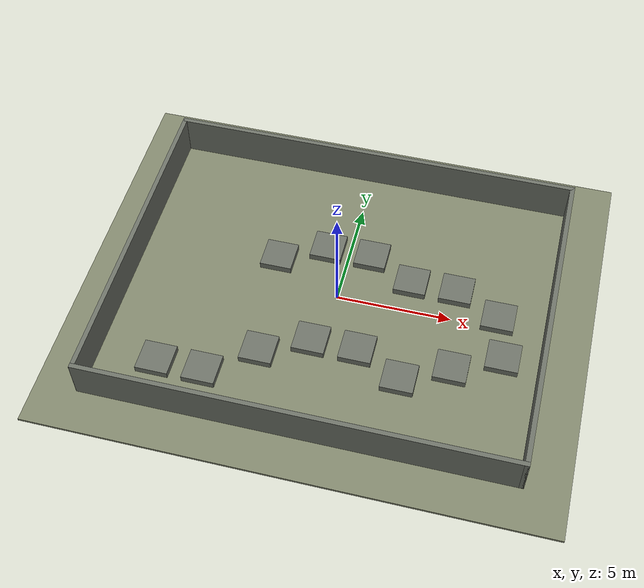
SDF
<?xml version="1.0" ?>
<sdf version="1.7">
  <world name="terrain_stepping_stones">
    <physics type="ode">
      <max_step_size>0.01</max_step_size>
    </physics>

    <light name="sun" type="directional">
      <cast_shadows>true</cast_shadows>
      <pose>0 0 10 0 0 0</pose>
      <diffuse>0.8 0.8 0.8 1</diffuse>
      <specular>0.3 0.3 0.3 1</specular>
      <attenuation>
        <range>1000</range>
        <constant>0.9</constant>
        <linear>0.01</linear>
        <quadratic>0.001</quadratic>
      </attenuation>
      <direction>-0.5 0.3 -1.0</direction>
    </light>

    <model name="ground_plane">
      <static>true</static>
      <pose>0 0 -0.05 0 0 0</pose>
      <link name="link">
        <collision name="collision">
          <geometry>
            <box><size>22.0 18.0 0.1</size></box>
          </geometry>
          <surface>
            <friction>
              <ode><mu>100</mu><mu2>50</mu2></ode>
            </friction>
          </surface>
        </collision>
        <visual name="visual">
          <geometry>
            <box><size>22.0 18.0 0.1</size></box>
          </geometry>
          <material>
            <ambient>0.5 0.52 0.42 1</ambient>
            <diffuse>0.5 0.52 0.42 1</diffuse>
          </material>
        </visual>
      </link>
    </model>

    <model name="platform_00">
      <static>true</static>
      <pose>0.000 -7.100 0.900 0 0 0</pose>
      <link name="link">
        <collision name="collision">
          <geometry>
            <box><size>18.400 0.200 1.800</size></box>
          </geometry>
          <surface>
            <friction>
              <ode><mu>1.0</mu><mu2>1.0</mu2></ode>
            </friction>
          </surface>
        </collision>
        <visual name="visual">
          <geometry>
            <box><size>18.400 0.200 1.800</size></box>
          </geometry>
          <material>
            <ambient>0.42 0.44 0.40 1</ambient>
            <diffuse>0.42 0.44 0.40 1</diffuse>
            <specular>0.1 0.1 0.1 1</specular>
          </material>
        </visual>
      </link>
    </model>

    <model name="platform_01">
      <static>true</static>
      <pose>0.000 7.100 0.900 0 0 0</pose>
      <link name="link">
        <collision name="collision">
          <geometry>
            <box><size>18.400 0.200 1.800</size></box>
          </geometry>
          <surface>
            <friction>
              <ode><mu>1.0</mu><mu2>1.0</mu2></ode>
            </friction>
          </surface>
        </collision>
        <visual name="visual">
          <geometry>
            <box><size>18.400 0.200 1.800</size></box>
          </geometry>
          <material>
            <ambient>0.42 0.44 0.40 1</ambient>
            <diffuse>0.42 0.44 0.40 1</diffuse>
            <specular>0.1 0.1 0.1 1</specular>
          </material>
        </visual>
      </link>
    </model>

    <model name="platform_02">
      <static>true</static>
      <pose>-9.100 0.000 0.900 0 0 0</pose>
      <link name="link">
        <collision name="collision">
          <geometry>
            <box><size>0.200 14.400 1.800</size></box>
          </geometry>
          <surface>
            <friction>
              <ode><mu>1.0</mu><mu2>1.0</mu2></ode>
            </friction>
          </surface>
        </collision>
        <visual name="visual">
          <geometry>
            <box><size>0.200 14.400 1.800</size></box>
          </geometry>
          <material>
            <ambient>0.42 0.44 0.40 1</ambient>
            <diffuse>0.42 0.44 0.40 1</diffuse>
            <specular>0.1 0.1 0.1 1</specular>
          </material>
        </visual>
      </link>
    </model>

    <model name="platform_03">
      <static>true</static>
      <pose>9.100 0.000 0.900 0 0 0</pose>
      <link name="link">
        <collision name="collision">
          <geometry>
            <box><size>0.200 14.400 1.800</size></box>
          </geometry>
          <surface>
            <friction>
              <ode><mu>1.0</mu><mu2>1.0</mu2></ode>
            </friction>
          </surface>
        </collision>
        <visual name="visual">
          <geometry>
            <box><size>0.200 14.400 1.800</size></box>
          </geometry>
          <material>
            <ambient>0.42 0.44 0.40 1</ambient>
            <diffuse>0.42 0.44 0.40 1</diffuse>
            <specular>0.1 0.1 0.1 1</specular>
          </material>
        </visual>
      </link>
    </model>

    <model name="platform_04">
      <static>true</static>
      <pose>-6.500 -5.000 0.150 0 0 0</pose>
      <link name="link">
        <collision name="collision">
          <geometry>
            <box><size>1.400 1.400 0.300</size></box>
          </geometry>
          <surface>
            <friction>
              <ode><mu>1.0</mu><mu2>1.0</mu2></ode>
            </friction>
          </surface>
        </collision>
        <visual name="visual">
          <geometry>
            <box><size>1.400 1.400 0.300</size></box>
          </geometry>
          <material>
            <ambient>0.42 0.44 0.40 1</ambient>
            <diffuse>0.42 0.44 0.40 1</diffuse>
            <specular>0.1 0.1 0.1 1</specular>
          </material>
        </visual>
      </link>
    </model>

    <model name="platform_05">
      <static>true</static>
      <pose>-4.500 -5.000 0.150 0 0 0</pose>
      <link name="link">
        <collision name="collision">
          <geometry>
            <box><size>1.400 1.400 0.300</size></box>
          </geometry>
          <surface>
            <friction>
              <ode><mu>1.0</mu><mu2>1.0</mu2></ode>
            </friction>
          </surface>
        </collision>
        <visual name="visual">
          <geometry>
            <box><size>1.400 1.400 0.300</size></box>
          </geometry>
          <material>
            <ambient>0.42 0.44 0.40 1</ambient>
            <diffuse>0.42 0.44 0.40 1</diffuse>
            <specular>0.1 0.1 0.1 1</specular>
          </material>
        </visual>
      </link>
    </model>

    <model name="platform_06">
      <static>true</static>
      <pose>-2.500 -3.500 0.150 0 0 0</pose>
      <link name="link">
        <collision name="collision">
          <geometry>
            <box><size>1.400 1.400 0.300</size></box>
          </geometry>
          <surface>
            <friction>
              <ode><mu>1.0</mu><mu2>1.0</mu2></ode>
            </friction>
          </surface>
        </collision>
        <visual name="visual">
          <geometry>
            <box><size>1.400 1.400 0.300</size></box>
          </geometry>
          <material>
            <ambient>0.42 0.44 0.40 1</ambient>
            <diffuse>0.42 0.44 0.40 1</diffuse>
            <specular>0.1 0.1 0.1 1</specular>
          </material>
        </visual>
      </link>
    </model>

    <model name="platform_07">
      <static>true</static>
      <pose>-0.500 -2.500 0.150 0 0 0</pose>
      <link name="link">
        <collision name="collision">
          <geometry>
            <box><size>1.400 1.400 0.300</size></box>
          </geometry>
          <surface>
            <friction>
              <ode><mu>1.0</mu><mu2>1.0</mu2></ode>
            </friction>
          </surface>
        </collision>
        <visual name="visual">
          <geometry>
            <box><size>1.400 1.400 0.300</size></box>
          </geometry>
          <material>
            <ambient>0.42 0.44 0.40 1</ambient>
            <diffuse>0.42 0.44 0.40 1</diffuse>
            <specular>0.1 0.1 0.1 1</specular>
          </material>
        </visual>
      </link>
    </model>

    <model name="platform_08">
      <static>true</static>
      <pose>1.500 -2.500 0.150 0 0 0</pose>
      <link name="link">
        <collision name="collision">
          <geometry>
            <box><size>1.400 1.400 0.300</size></box>
          </geometry>
          <surface>
            <friction>
              <ode><mu>1.0</mu><mu2>1.0</mu2></ode>
            </friction>
          </surface>
        </collision>
        <visual name="visual">
          <geometry>
            <box><size>1.400 1.400 0.300</size></box>
          </geometry>
          <material>
            <ambient>0.42 0.44 0.40 1</ambient>
            <diffuse>0.42 0.44 0.40 1</diffuse>
            <specular>0.1 0.1 0.1 1</specular>
          </material>
        </visual>
      </link>
    </model>

    <model name="platform_09">
      <static>true</static>
      <pose>3.500 -3.500 0.150 0 0 0</pose>
      <link name="link">
        <collision name="collision">
          <geometry>
            <box><size>1.400 1.400 0.300</size></box>
          </geometry>
          <surface>
            <friction>
              <ode><mu>1.0</mu><mu2>1.0</mu2></ode>
            </friction>
          </surface>
        </collision>
        <visual name="visual">
          <geometry>
            <box><size>1.400 1.400 0.300</size></box>
          </geometry>
          <material>
            <ambient>0.42 0.44 0.40 1</ambient>
            <diffuse>0.42 0.44 0.40 1</diffuse>
            <specular>0.1 0.1 0.1 1</specular>
          </material>
        </visual>
      </link>
    </model>

    <model name="platform_10">
      <static>true</static>
      <pose>5.500 -2.500 0.150 0 0 0</pose>
      <link name="link">
        <collision name="collision">
          <geometry>
            <box><size>1.400 1.400 0.300</size></box>
          </geometry>
          <surface>
            <friction>
              <ode><mu>1.0</mu><mu2>1.0</mu2></ode>
            </friction>
          </surface>
        </collision>
        <visual name="visual">
          <geometry>
            <box><size>1.400 1.400 0.300</size></box>
          </geometry>
          <material>
            <ambient>0.42 0.44 0.40 1</ambient>
            <diffuse>0.42 0.44 0.40 1</diffuse>
            <specular>0.1 0.1 0.1 1</specular>
          </material>
        </visual>
      </link>
    </model>

    <model name="platform_11">
      <static>true</static>
      <pose>7.500 -1.500 0.150 0 0 0</pose>
      <link name="link">
        <collision name="collision">
          <geometry>
            <box><size>1.400 1.400 0.300</size></box>
          </geometry>
          <surface>
            <friction>
              <ode><mu>1.0</mu><mu2>1.0</mu2></ode>
            </friction>
          </surface>
        </collision>
        <visual name="visual">
          <geometry>
            <box><size>1.400 1.400 0.300</size></box>
          </geometry>
          <material>
            <ambient>0.42 0.44 0.40 1</ambient>
            <diffuse>0.42 0.44 0.40 1</diffuse>
            <specular>0.1 0.1 0.1 1</specular>
          </material>
        </visual>
      </link>
    </model>

    <model name="platform_12">
      <static>true</static>
      <pose>7.000 0.500 0.150 0 0 0</pose>
      <link name="link">
        <collision name="collision">
          <geometry>
            <box><size>1.400 1.400 0.300</size></box>
          </geometry>
          <surface>
            <friction>
              <ode><mu>1.0</mu><mu2>1.0</mu2></ode>
            </friction>
          </surface>
        </collision>
        <visual name="visual">
          <geometry>
            <box><size>1.400 1.400 0.300</size></box>
          </geometry>
          <material>
            <ambient>0.42 0.44 0.40 1</ambient>
            <diffuse>0.42 0.44 0.40 1</diffuse>
            <specular>0.1 0.1 0.1 1</specular>
          </material>
        </visual>
      </link>
    </model>

    <model name="platform_13">
      <static>true</static>
      <pose>5.000 1.500 0.150 0 0 0</pose>
      <link name="link">
        <collision name="collision">
          <geometry>
            <box><size>1.400 1.400 0.300</size></box>
          </geometry>
          <surface>
            <friction>
              <ode><mu>1.0</mu><mu2>1.0</mu2></ode>
            </friction>
          </surface>
        </collision>
        <visual name="visual">
          <geometry>
            <box><size>1.400 1.400 0.300</size></box>
          </geometry>
          <material>
            <ambient>0.42 0.44 0.40 1</ambient>
            <diffuse>0.42 0.44 0.40 1</diffuse>
            <specular>0.1 0.1 0.1 1</specular>
          </material>
        </visual>
      </link>
    </model>

    <model name="platform_14">
      <static>true</static>
      <pose>3.000 1.500 0.150 0 0 0</pose>
      <link name="link">
        <collision name="collision">
          <geometry>
            <box><size>1.400 1.400 0.300</size></box>
          </geometry>
          <surface>
            <friction>
              <ode><mu>1.0</mu><mu2>1.0</mu2></ode>
            </friction>
          </surface>
        </collision>
        <visual name="visual">
          <geometry>
            <box><size>1.400 1.400 0.300</size></box>
          </geometry>
          <material>
            <ambient>0.42 0.44 0.40 1</ambient>
            <diffuse>0.42 0.44 0.40 1</diffuse>
            <specular>0.1 0.1 0.1 1</specular>
          </material>
        </visual>
      </link>
    </model>

    <model name="platform_15">
      <static>true</static>
      <pose>1.000 2.500 0.150 0 0 0</pose>
      <link name="link">
        <collision name="collision">
          <geometry>
            <box><size>1.400 1.400 0.300</size></box>
          </geometry>
          <surface>
            <friction>
              <ode><mu>1.0</mu><mu2>1.0</mu2></ode>
            </friction>
          </surface>
        </collision>
        <visual name="visual">
          <geometry>
            <box><size>1.400 1.400 0.300</size></box>
          </geometry>
          <material>
            <ambient>0.42 0.44 0.40 1</ambient>
            <diffuse>0.42 0.44 0.40 1</diffuse>
            <specular>0.1 0.1 0.1 1</specular>
          </material>
        </visual>
      </link>
    </model>

    <model name="platform_16">
      <static>true</static>
      <pose>-1.000 2.500 0.150 0 0 0</pose>
      <link name="link">
        <collision name="collision">
          <geometry>
            <box><size>1.400 1.400 0.300</size></box>
          </geometry>
          <surface>
            <friction>
              <ode><mu>1.0</mu><mu2>1.0</mu2></ode>
            </friction>
          </surface>
        </collision>
        <visual name="visual">
          <geometry>
            <box><size>1.400 1.400 0.300</size></box>
          </geometry>
          <material>
            <ambient>0.42 0.44 0.40 1</ambient>
            <diffuse>0.42 0.44 0.40 1</diffuse>
            <specular>0.1 0.1 0.1 1</specular>
          </material>
        </visual>
      </link>
    </model>

    <model name="platform_17">
      <static>true</static>
      <pose>-3.000 1.500 0.150 0 0 0</pose>
      <link name="link">
        <collision name="collision">
          <geometry>
            <box><size>1.400 1.400 0.300</size></box>
          </geometry>
          <surface>
            <friction>
              <ode><mu>1.0</mu><mu2>1.0</mu2></ode>
            </friction>
          </surface>
        </collision>
        <visual name="visual">
          <geometry>
            <box><size>1.400 1.400 0.300</size></box>
          </geometry>
          <material>
            <ambient>0.42 0.44 0.40 1</ambient>
            <diffuse>0.42 0.44 0.40 1</diffuse>
            <specular>0.1 0.1 0.1 1</specular>
          </material>
        </visual>
      </link>
    </model>

  </world>
</sdf>
